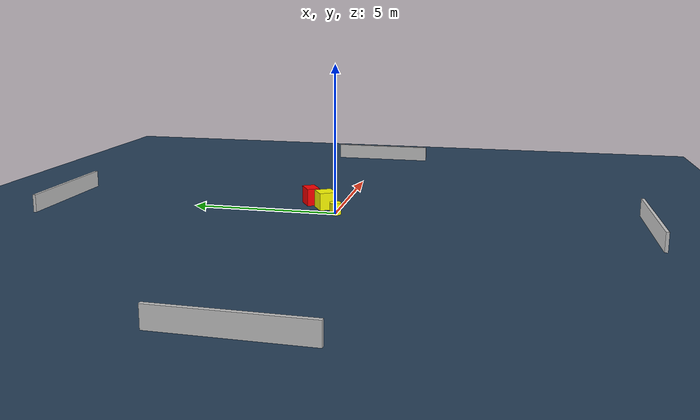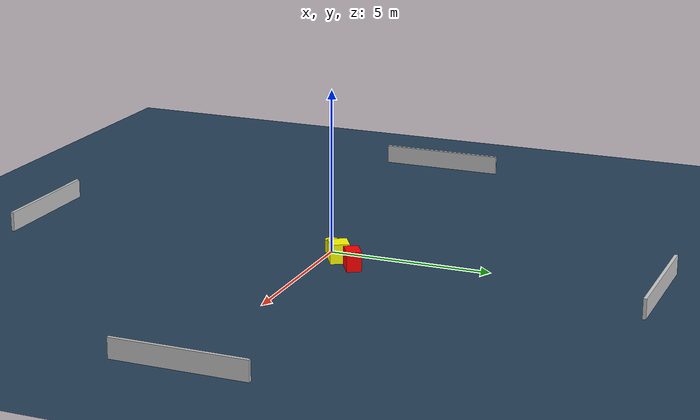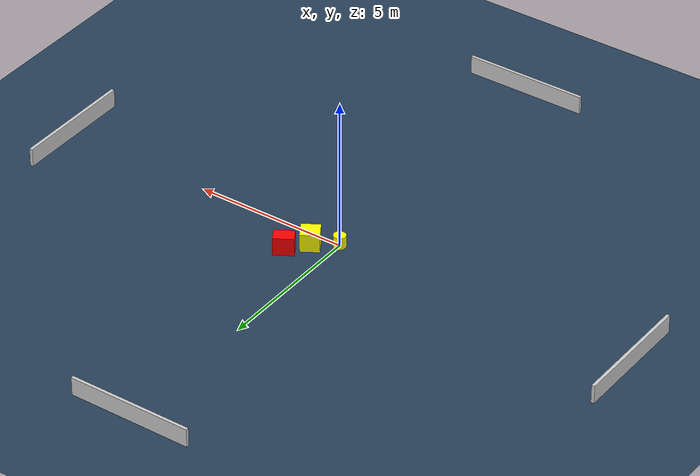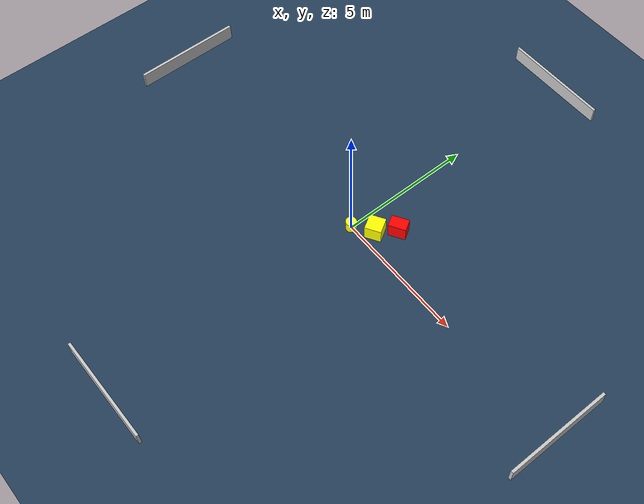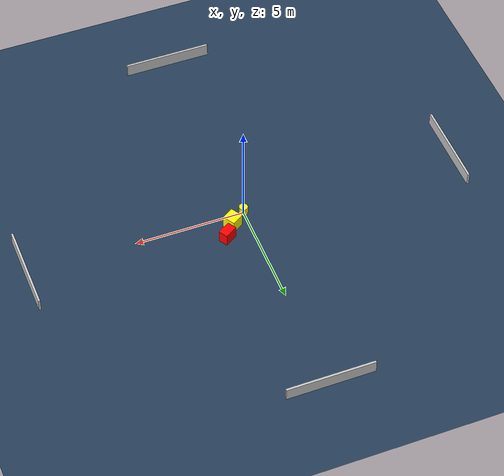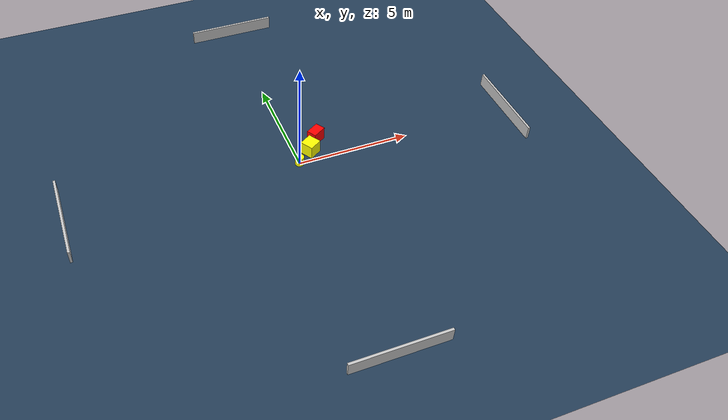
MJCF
<?xml version="1.0" ?>
<mujoco model="generated_environment">
  <option timestep="0.01" integrator="RK4" cone="elliptic"/>
  <default>
    <geom density="1"/>
  </default>
  <asset>
    <texture builtin="gradient" height="3072" name="skybox" rgb1="0.3 0.5 0.7" rgb2="0 0 0" type="skybox" width="512"/>
    <texture builtin="checker" height="300" name="groundplane" rgb1="0.2 0.3 0.4" rgb2="0.1 0.2 0.3" type="2d" width="300"/>
    <material name="groundplane" reflectance="0.2" texrepeat="5 5" texture="groundplane"/>
  </asset>
  <worldbody>
    <light dir="0 0 -1" directional="true" pos="0 0 1.5"/>
    <geom condim="3" friction="0.5 0.005 0.001" material="groundplane" name="floor" pos="0 0 0" size="0 0 0.05" type="plane"/>
    <body name="walls">
      <geom name="wall_1" condim="4" pos="-10.0 0.0 0.3" rgba="0.800000011920929 0.800000011920929 0.800000011920929 1.0" size="0.05 2.0 0.3" type="box"/>
      <geom name="wall_2" condim="4" pos="10.0 0.0 0.3" rgba="0.800000011920929 0.800000011920929 0.800000011920929 1.0" size="0.05 2.0 0.3" type="box"/>
      <geom name="wall_3" condim="4" pos="0.0 -10.0 0.3" rgba="0.800000011920929 0.800000011920929 0.800000011920929 1.0" size="2.0 0.05 0.3" type="box"/>
      <geom name="wall_4" condim="4" pos="0.0 10.0 0.3" rgba="0.800000011920929 0.800000011920929 0.800000011920929 1.0" size="2.0 0.05 0.3" type="box"/>
    </body>
    <body name="robot">
      <joint name="joint_x" type="slide" pos="0 0 0" axis="1 0 0"/>
      <joint name="joint_y" type="slide" pos="0 0 0" axis="0 1 0"/>
      <geom name="robot" type="cylinder" pos="0.0 0.0 0.2" size="0.2 0.2 0.0" mass="5.0" friction="1.0 0.005 0.0001" condim="4" rgba="1.0 1.0 0.0 1.0"/>
    </body>
    <body name="obstacle_1_movable">
      <geom name="obstacle_1_movable" condim="4" pos="0.694997432356013 0.5078546011121311 0.3" euler="0 0 121.46678187890105" friction="0.0 0.005 0.001" rgba="1.0 1.0 0.0 1.0" size="0.29490836264160436 0.30071501580681814 0.3" type="box" mass="0.1"/>
      <joint type="free"/>
    </body>
    <body name="obstacle_2_static">
      <geom name="obstacle_2_static" condim="4" pos="1.183646016392724 1.150326659507117 0.3" euler="0 0 121.16863299995265" friction="0.0 0.005 0.001" rgba="1.0 0.0 0.0 1.0" size="0.22314026929797198 0.3241848549437425 0.3" type="box"/>
    </body>
  </worldbody>
  <actuator>
    <motor name="actuator_x" joint="joint_x" gear="1" ctrlrange="-1 1"/>
    <motor name="actuator_y" joint="joint_y" gear="1" ctrlrange="-1 1"/>
  </actuator>
</mujoco>
